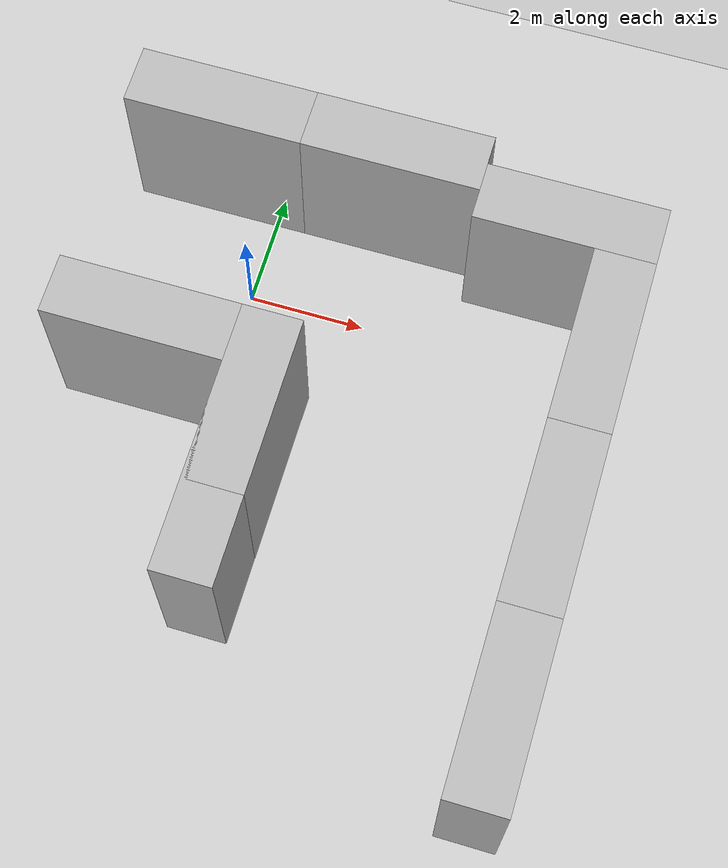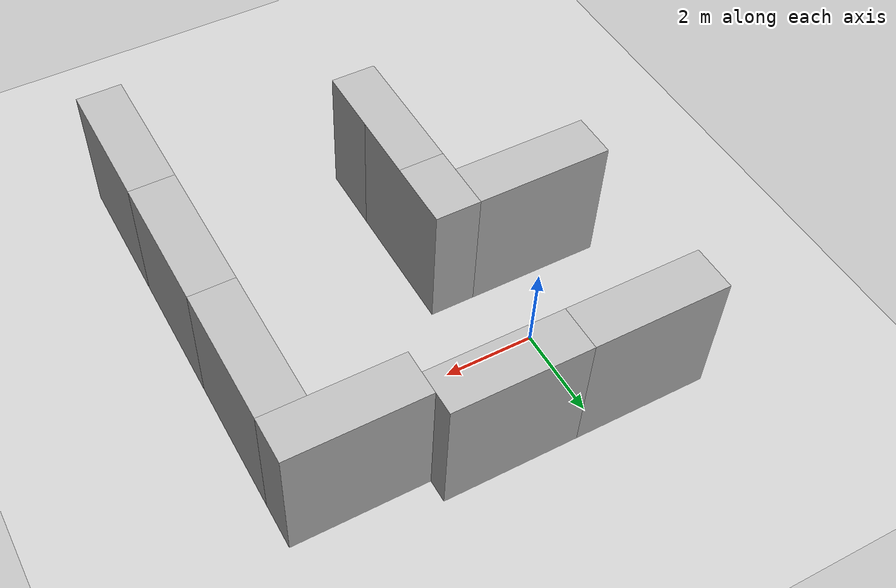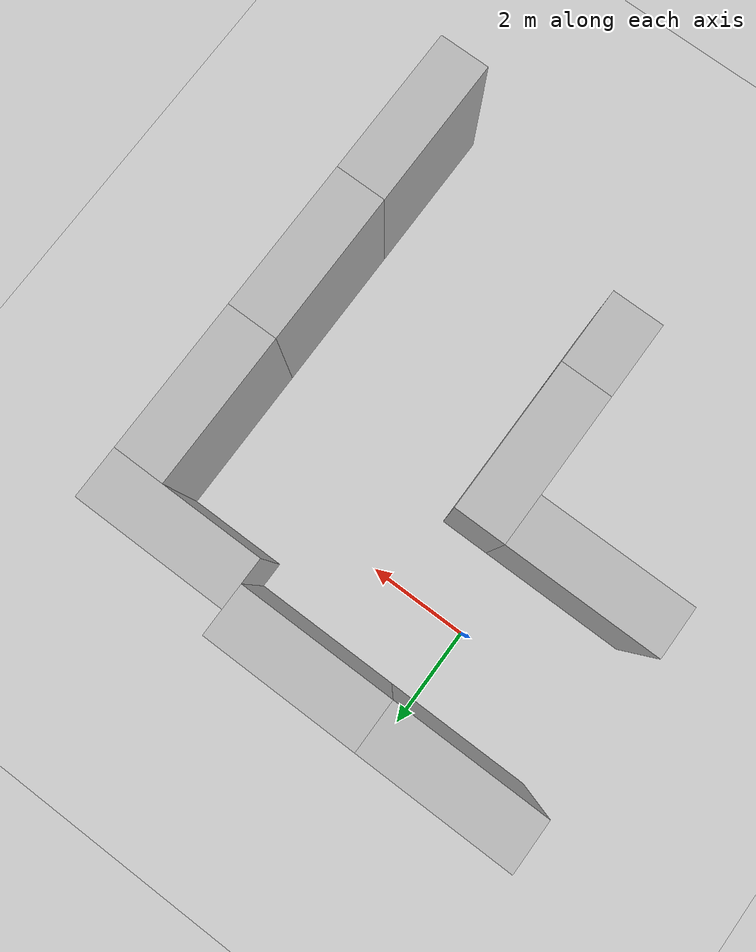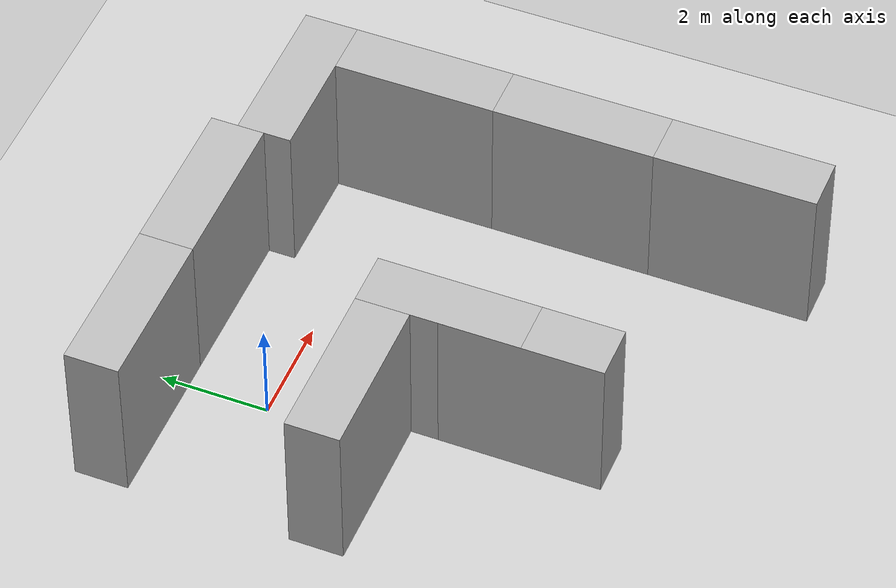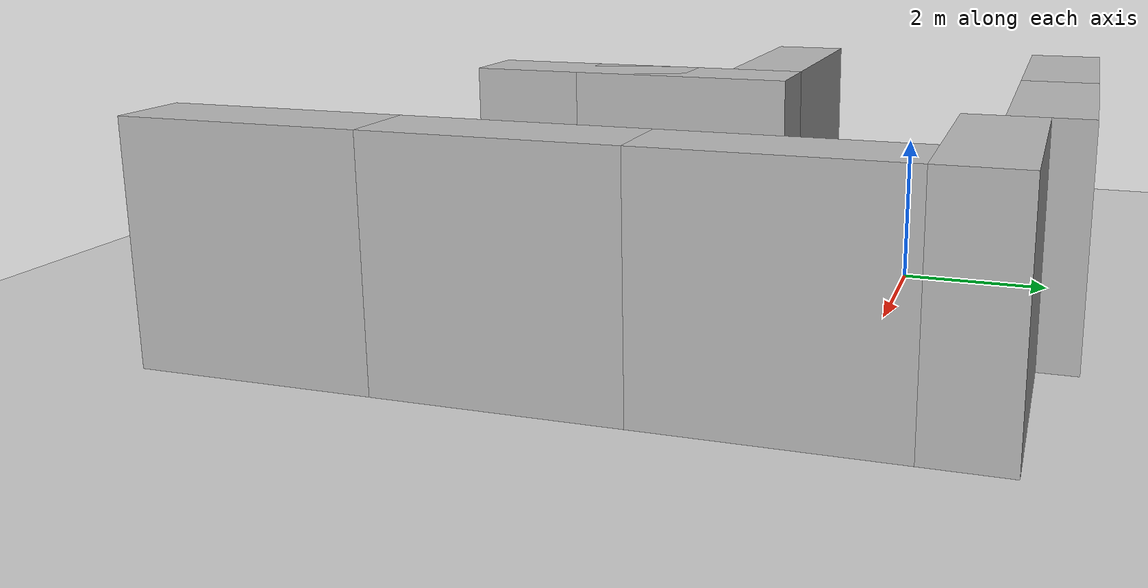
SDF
<sdf version="1.4">
 <world name="default">
  <light name="sun" type="directional">
   <pose>0 0 10 0 -0 0</pose>
   <diffuse>1 1 1 1</diffuse>
   <specular>1 1 1 1</specular>
   <attenuation>
    <range>1000</range>
    <constant>0.9</constant>
    <linear>0.01</linear>
    <quadratic>0.001</quadratic>
   </attenuation>
   <direction>-0 0 -1</direction>
  </light>
  <light name="gi_light_0" type="point">
   <pose>0 0 10 0 -0 0</pose>
   <diffuse>0.6 0.6 0.6 1</diffuse>
   <specular>0.8 0.8 0.8 1</specular>
   <attenuation>
    <range>30</range>
    <constant>0.9</constant>
    <linear>0.01</linear>
    <quadratic>0.001</quadratic>
   </attenuation>
   <direction>-0 0 -1</direction>
  </light>
  <light name="gi_light_1" type="point">
   <pose>5 0 10 0 -0 0</pose>
   <diffuse>0.6 0.6 0.6 1</diffuse>
   <specular>0.8 0.8 0.8 1</specular>
   <attenuation>
    <range>30</range>
    <constant>0.9</constant>
    <linear>0.01</linear>
    <quadratic>0.001</quadratic>
   </attenuation>
   <direction>-0 0 -1</direction>
  </light>
  <light name="gi_light_2" type="point">
   <pose>-5 0 10 0 -0 0</pose>
   <diffuse>0.6 0.6 0.6 1</diffuse>
   <specular>0.8 0.8 0.8 1</specular>
   <attenuation>
    <range>30</range>
    <constant>0.9</constant>
    <linear>0.01</linear>
    <quadratic>0.001</quadratic>
   </attenuation>
   <direction>-0 0 -1</direction>
  </light>
  <light name="gi_light_3" type="point">
   <pose>0 5 10 0 -0 0</pose>
   <diffuse>0.6 0.6 0.6 1</diffuse>
   <specular>0.8 0.8 0.8 1</specular>
   <attenuation>
    <range>30</range>
    <constant>0.9</constant>
    <linear>0.01</linear>
    <quadratic>0.001</quadratic>
   </attenuation>
   <direction>-0 0 -1</direction>
  </light>
  <light name="gi_light_4" type="point">
   <pose>0 -5 10 0 -0 0</pose>
   <diffuse>0.6 0.6 0.6 1</diffuse>
   <specular>0.8 0.8 0.8 1</specular>
   <attenuation>
    <range>30</range>
    <constant>0.9</constant>
    <linear>0.01</linear>
    <quadratic>0.001</quadratic>
   </attenuation>
   <direction>-0 0 -1</direction>
  </light>
  <plugin name="ros_interface_plugin" filename="librotors_gazebo_ros_interface_plugin.so"/>
  <physics type="ode">
   <ode>
    <solver><type>quick</type><iters>1000</iters><sor>1.3</sor></solver>
    <constraints>
     <cfm>0</cfm>
     <erp>0.2</erp>
     <contact_max_correcting_vel>100</contact_max_correcting_vel>
     <contact_surface_layer>0.001</contact_surface_layer>
    </constraints>
   </ode>
   <max_step_size>0.01</max_step_size>
   <real_time_factor>1</real_time_factor>
   <real_time_update_rate>100</real_time_update_rate>
   <gravity>0 0 -9.8</gravity>
  </physics>
  <scene><ambient>0.4 0.4 0.4 1</ambient><background>0.7 0.7 0.7 1</background><shadows>1</shadows></scene>
  <spherical_coordinates>
   <surface_model>EARTH_WGS84</surface_model>
   <latitude_deg>0</latitude_deg>
   <longitude_deg>0</longitude_deg>
   <elevation>0</elevation>
   <heading_deg>0</heading_deg>
  </spherical_coordinates>
  <model name="ground_plane">
   <static>1</static>
   <link name="link">
    <collision name="collision">
     <geometry><plane><normal>0 0 1</normal><size>100 100</size></plane></geometry>
     <surface><friction><ode><mu>100</mu><mu2>50</mu2></ode></friction></surface>
    </collision>
    <visual name="visual">
     <cast_shadows>0</cast_shadows>
     <geometry><plane><normal>0 0 1</normal><size>100 100</size></plane></geometry>
     <material>
      <script><uri>file://media/materials/scripts/gazebo.material</uri><name>Gazebo/Grey</name></script>
     </material>
    </visual>
    <velocity_decay><linear>0</linear><angular>0</angular></velocity_decay>
   </link>
  </model>
  <model name="brick_box_3x1x3_0">
   <static>1</static>
   <link name="chassis">
    <pose>0 0 1.5 0 -0 0</pose>
    <collision name="collision"><geometry><box><size>3 1 3</size></box></geometry></collision>
    <visual name="visual">
     <geometry><mesh><uri>model://brick_box_3x1x3/meshes/simple_box.dae</uri><scale>3 1 3</scale></mesh></geometry>
     <material>
      <script>
       <uri>model://brick_box_3x1x3/materials/scripts</uri>
       <uri>model://brick_box_3x1x3/materials/textures</uri>
       <name>BrickBox/Diffuse</name>
      </script>
     </material>
    </visual>
    <velocity_decay><linear>0</linear><angular>0</angular></velocity_decay>
   </link>
   <pose>6 -0.5 0 0 -0 1.5708</pose>
  </model>
  <model name="brick_box_3x1x3">
   <static>1</static>
   <link name="chassis">
    <pose>0 0 1.5 0 -0 0</pose>
    <collision name="collision"><geometry><box><size>3 1 3</size></box></geometry></collision>
    <visual name="visual">
     <geometry><mesh><uri>model://brick_box_3x1x3/meshes/simple_box.dae</uri><scale>3 1 3</scale></mesh></geometry>
     <material>
      <script>
       <uri>model://brick_box_3x1x3/materials/scripts</uri>
       <uri>model://brick_box_3x1x3/materials/textures</uri>
       <name>BrickBox/Diffuse</name>
      </script>
     </material>
    </visual>
    <velocity_decay><linear>0</linear><angular>0</angular></velocity_decay>
   </link>
   <pose>5 1.5 0 0 -0 0</pose>
  </model>
  <model name="brick_box_3x1x3_1">
   <static>1</static>
   <link name="chassis">
    <pose>0 0 1.5 0 -0 0</pose>
    <collision name="collision"><geometry><box><size>3 1 3</size></box></geometry></collision>
    <visual name="visual">
     <geometry><mesh><uri>model://brick_box_3x1x3/meshes/simple_box.dae</uri><scale>3 1 3</scale></mesh></geometry>
     <material>
      <script>
       <uri>model://brick_box_3x1x3/materials/scripts</uri>
       <uri>model://brick_box_3x1x3/materials/textures</uri>
       <name>BrickBox/Diffuse</name>
      </script>
     </material>
    </visual>
    <velocity_decay><linear>0</linear><angular>0</angular></velocity_decay>
   </link>
   <pose>6 -3.5 0 0 -0 1.5708</pose>
  </model>
  <model name="brick_box_3x1x3_2">
   <static>1</static>
   <link name="chassis">
    <pose>0 0 1.5 0 -0 0</pose>
    <collision name="collision"><geometry><box><size>3 1 3</size></box></geometry></collision>
    <visual name="visual">
     <geometry><mesh><uri>model://brick_box_3x1x3/meshes/simple_box.dae</uri><scale>3 1 3</scale></mesh></geometry>
     <material>
      <script>
       <uri>model://brick_box_3x1x3/materials/scripts</uri>
       <uri>model://brick_box_3x1x3/materials/textures</uri>
       <name>BrickBox/Diffuse</name>
      </script>
     </material>
    </visual>
    <velocity_decay><linear>0</linear><angular>0</angular></velocity_decay>
   </link>
   <pose>2 2 0 0 -0 0</pose>
  </model>
  <model name="brick_box_3x1x3_3">
   <static>1</static>
   <link name="chassis">
    <pose>0 0 1.5 0 -0 0</pose>
    <collision name="collision"><geometry><box><size>3 1 3</size></box></geometry></collision>
    <visual name="visual">
     <geometry><mesh><uri>model://brick_box_3x1x3/meshes/simple_box.dae</uri><scale>3 1 3</scale></mesh></geometry>
     <material>
      <script>
       <uri>model://brick_box_3x1x3/materials/scripts</uri>
       <uri>model://brick_box_3x1x3/materials/textures</uri>
       <name>BrickBox/Diffuse</name>
      </script>
     </material>
    </visual>
    <velocity_decay><linear>0</linear><angular>0</angular></velocity_decay>
   </link>
   <pose>-1 2 0 0 -0 0</pose>
  </model>
  <model name="brick_box_3x1x3_4">
   <static>1</static>
   <link name="chassis">
    <pose>0 0 1.5 0 -0 0</pose>
    <collision name="collision"><geometry><box><size>3 1 3</size></box></geometry></collision>
    <visual name="visual">
     <geometry><mesh><uri>model://brick_box_3x1x3/meshes/simple_box.dae</uri><scale>3 1 3</scale></mesh></geometry>
     <material>
      <script>
       <uri>model://brick_box_3x1x3/materials/scripts</uri>
       <uri>model://brick_box_3x1x3/materials/textures</uri>
       <name>BrickBox/Diffuse</name>
      </script>
     </material>
    </visual>
    <velocity_decay><linear>0</linear><angular>0</angular></velocity_decay>
   </link>
   <pose>-1 -2 0 0 -0 0</pose>
  </model>
  <model name="brick_box_3x1x3_5">
   <static>1</static>
   <link name="chassis">
    <pose>0 0 1.5 0 -0 0</pose>
    <collision name="collision"><geometry><box><size>3 1 3</size></box></geometry></collision>
    <visual name="visual">
     <geometry><mesh><uri>model://brick_box_3x1x3/meshes/simple_box.dae</uri><scale>3 1 3</scale></mesh></geometry>
     <material>
      <script>
       <uri>model://brick_box_3x1x3/materials/scripts</uri>
       <uri>model://brick_box_3x1x3/materials/textures</uri>
       <name>BrickBox/Diffuse</name>
      </script>
     </material>
    </visual>
    <velocity_decay><linear>0</linear><angular>0</angular></velocity_decay>
   </link>
   <pose>1 -3 0 0 0 1.5708</pose>
  </model>
  <model name="brick_box_3x1x3_6">
   <static>1</static>
   <link name="chassis">
    <pose>0 0 1.5 0 -0 0</pose>
    <collision name="collision"><geometry><box><size>3 1 3</size></box></geometry></collision>
    <visual name="visual">
     <geometry><mesh><uri>model://brick_box_3x1x3/meshes/simple_box.dae</uri><scale>3 1 3</scale></mesh></geometry>
     <material>
      <script>
       <uri>model://brick_box_3x1x3/materials/scripts</uri>
       <uri>model://brick_box_3x1x3/materials/textures</uri>
       <name>BrickBox/Diffuse</name>
      </script>
     </material>
    </visual>
    <velocity_decay><linear>0</linear><angular>0</angular></velocity_decay>
   </link>
   <pose>1 -4.5 0 0 0 1.5708</pose>
  </model>
  <model name="brick_box_3x1x3_7">
   <static>1</static>
   <link name="chassis">
    <pose>0 0 1.5 0 -0 0</pose>
    <collision name="collision"><geometry><box><size>3 1 3</size></box></geometry></collision>
    <visual name="visual">
     <geometry><mesh><uri>model://brick_box_3x1x3/meshes/simple_box.dae</uri><scale>3 1 3</scale></mesh></geometry>
     <material>
      <script>
       <uri>model://brick_box_3x1x3/materials/scripts</uri>
       <uri>model://brick_box_3x1x3/materials/textures</uri>
       <name>BrickBox/Diffuse</name>
      </script>
     </material>
    </visual>
    <velocity_decay><linear>0</linear><angular>0</angular></velocity_decay>
   </link>
   <pose>6 -6.5 0 0 0 1.5708</pose>
  </model>
 </world>
</sdf>
